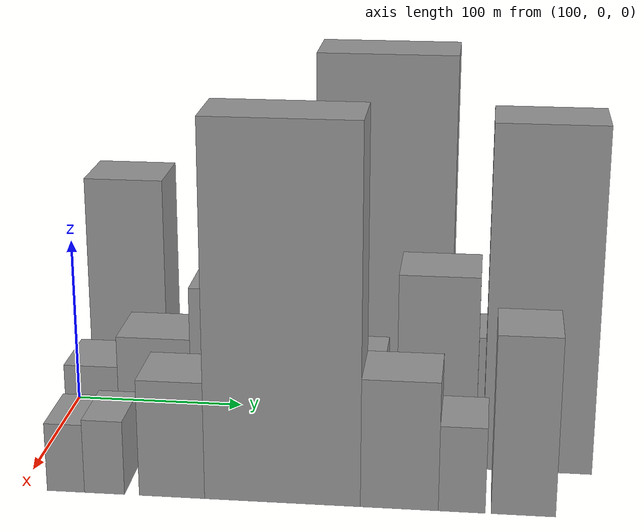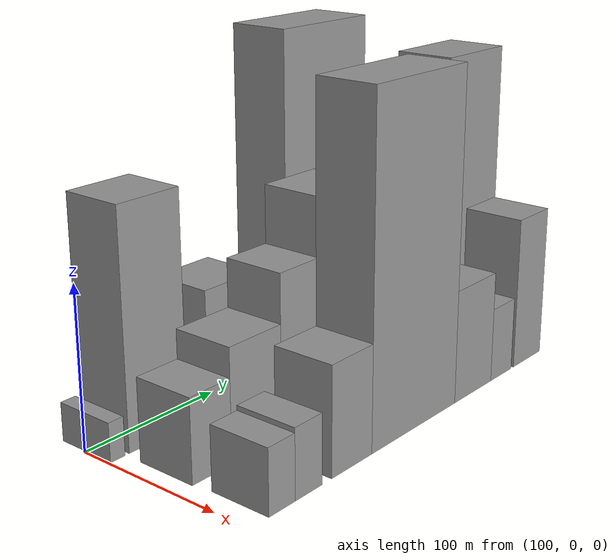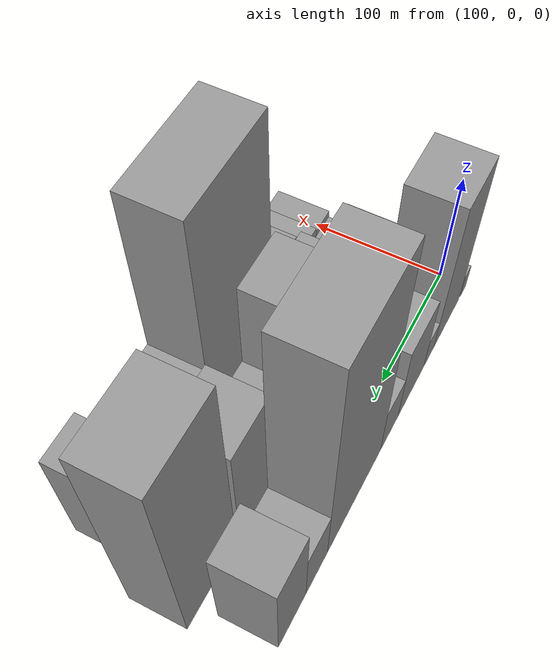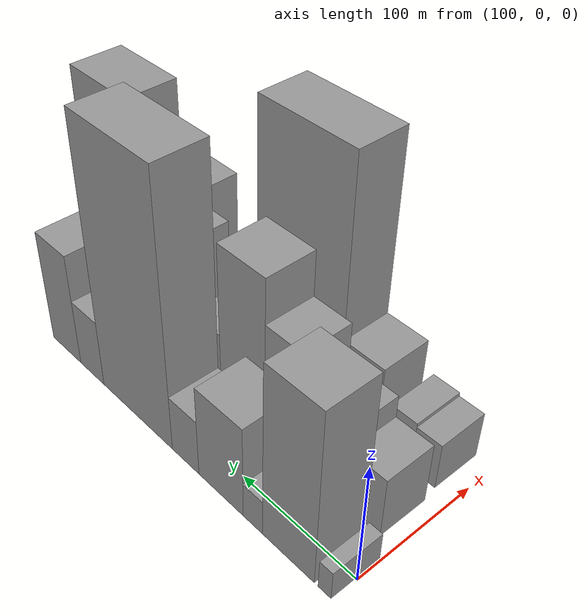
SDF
<sdf version="1.6">
 <world name="default">
  <model name="building_16">
   <static>1</static>
   <pose>100.0000 6.3810 0 0.000000 0.000000 0.000000</pose>
   <link name="link">
    <pose>0 0 12.00 0 0 0</pose>
    <collision name="collision"><geometry><box><size>40.0000 10.6311 24.0000</size></box></geometry></collision>
    <visual name="visual">
     <cast_shadows>0</cast_shadows>
     <geometry><box><size>40.0000 10.6311 24.0000</size></box></geometry>
     <material>
      <script>
       <uri>model://grey_wall/materials/scripts</uri>
       <uri>model://grey_wall/materials/textures</uri>
       <name>vrc/grey_wall</name>
      </script>
     </material>
    </visual>
   </link>
  </model>
  <model name="building_17">
   <static>1</static>
   <pose>100.0000 37.1451 0 0.000000 0.000000 0.000000</pose>
   <link name="link">
    <pose>0 0 72.00 0 0 0</pose>
    <collision name="collision"><geometry><box><size>40.0000 44.8969 144.0000</size></box></geometry></collision>
    <visual name="visual">
     <cast_shadows>0</cast_shadows>
     <geometry><box><size>40.0000 44.8969 144.0000</size></box></geometry>
     <material>
      <script>
       <uri>model://grey_wall/materials/scripts</uri>
       <uri>model://grey_wall/materials/textures</uri>
       <name>vrc/grey_wall</name>
      </script>
     </material>
    </visual>
   </link>
  </model>
  <model name="building_18">
   <static>1</static>
   <pose>100.0000 68.3640 0 0.000000 0.000000 0.000000</pose>
   <link name="link">
    <pose>0 0 15.00 0 0 0</pose>
    <collision name="collision"><geometry><box><size>40.0000 17.5411 30.0000</size></box></geometry></collision>
    <visual name="visual">
     <cast_shadows>0</cast_shadows>
     <geometry><box><size>40.0000 17.5411 30.0000</size></box></geometry>
     <material>
      <script>
       <uri>model://grey_wall/materials/scripts</uri>
       <uri>model://grey_wall/materials/textures</uri>
       <name>vrc/grey_wall</name>
      </script>
     </material>
    </visual>
   </link>
  </model>
  <model name="building_19">
   <static>1</static>
   <pose>100.0000 98.6439 0 0.000000 0.000000 0.000000</pose>
   <link name="link">
    <pose>0 0 39.00 0 0 0</pose>
    <collision name="collision"><geometry><box><size>40.0000 43.0187 78.0000</size></box></geometry></collision>
    <visual name="visual">
     <cast_shadows>0</cast_shadows>
     <geometry><box><size>40.0000 43.0187 78.0000</size></box></geometry>
     <material>
      <script>
       <uri>model://grey_wall/materials/scripts</uri>
       <uri>model://grey_wall/materials/textures</uri>
       <name>vrc/grey_wall</name>
      </script>
     </material>
    </visual>
   </link>
  </model>
  <model name="building_20">
   <static>1</static>
   <pose>100.0000 133.8845 0 0.000000 0.000000 0.000000</pose>
   <link name="link">
    <pose>0 0 24.00 0 0 0</pose>
    <collision name="collision"><geometry><box><size>40.0000 27.4626 48.0000</size></box></geometry></collision>
    <visual name="visual">
     <cast_shadows>0</cast_shadows>
     <geometry><box><size>40.0000 27.4626 48.0000</size></box></geometry>
     <material>
      <script>
       <uri>model://grey_wall/materials/scripts</uri>
       <uri>model://grey_wall/materials/textures</uri>
       <name>vrc/grey_wall</name>
      </script>
     </material>
    </visual>
   </link>
  </model>
  <model name="building_21">
   <static>1</static>
   <pose>100.0000 186.3772 0 0.000000 0.000000 0.000000</pose>
   <link name="link">
    <pose>0 0 109.50 0 0 0</pose>
    <collision name="collision"><geometry><box><size>40.0000 77.5228 219.0000</size></box></geometry></collision>
    <visual name="visual">
     <cast_shadows>0</cast_shadows>
     <geometry><box><size>40.0000 77.5228 219.0000</size></box></geometry>
     <material>
      <script>
       <uri>model://grey_wall/materials/scripts</uri>
       <uri>model://grey_wall/materials/textures</uri>
       <name>vrc/grey_wall</name>
      </script>
     </material>
    </visual>
   </link>
  </model>
  <model name="building_22">
   <static>1</static>
   <pose>100.0000 239.5046 0 0.000000 0.000000 0.000000</pose>
   <link name="link">
    <pose>0 0 28.50 0 0 0</pose>
    <collision name="collision"><geometry><box><size>40.0000 28.7320 57.0000</size></box></geometry></collision>
    <visual name="visual">
     <cast_shadows>0</cast_shadows>
     <geometry><box><size>40.0000 28.7320 57.0000</size></box></geometry>
     <material>
      <script>
       <uri>model://grey_wall/materials/scripts</uri>
       <uri>model://grey_wall/materials/textures</uri>
       <name>vrc/grey_wall</name>
      </script>
     </material>
    </visual>
   </link>
  </model>
  <model name="building_23">
   <static>1</static>
   <pose>100.0000 271.5599 0 0.000000 0.000000 0.000000</pose>
   <link name="link">
    <pose>0 0 48.00 0 0 0</pose>
    <collision name="collision"><geometry><box><size>40.0000 35.3786 96.0000</size></box></geometry></collision>
    <visual name="visual">
     <cast_shadows>0</cast_shadows>
     <geometry><box><size>40.0000 35.3786 96.0000</size></box></geometry>
     <material>
      <script>
       <uri>model://grey_wall/materials/scripts</uri>
       <uri>model://grey_wall/materials/textures</uri>
       <name>vrc/grey_wall</name>
      </script>
     </material>
    </visual>
   </link>
  </model>
  <model name="building_46">
   <static>1</static>
   <pose>152.0000 27.1934 0 0.000000 0.000000 0.000000</pose>
   <link name="link">
    <pose>0 0 25.50 0 0 0</pose>
    <collision name="collision"><geometry><box><size>40.0000 30.2370 51.0000</size></box></geometry></collision>
    <visual name="visual">
     <cast_shadows>0</cast_shadows>
     <geometry><box><size>40.0000 30.2370 51.0000</size></box></geometry>
     <material>
      <script>
       <uri>model://grey_wall/materials/scripts</uri>
       <uri>model://grey_wall/materials/textures</uri>
       <name>vrc/grey_wall</name>
      </script>
     </material>
    </visual>
   </link>
  </model>
  <model name="building_47">
   <static>1</static>
   <pose>152.0000 62.8523 0 0.000000 0.000000 0.000000</pose>
   <link name="link">
    <pose>0 0 34.50 0 0 0</pose>
    <collision name="collision"><geometry><box><size>40.0000 41.0806 69.0000</size></box></geometry></collision>
    <visual name="visual">
     <cast_shadows>0</cast_shadows>
     <geometry><box><size>40.0000 41.0806 69.0000</size></box></geometry>
     <material>
      <script>
       <uri>model://grey_wall/materials/scripts</uri>
       <uri>model://grey_wall/materials/textures</uri>
       <name>vrc/grey_wall</name>
      </script>
     </material>
    </visual>
   </link>
  </model>
  <model name="building_48">
   <static>1</static>
   <pose>152.0000 99.8053 0 0.000000 0.000000 0.000000</pose>
   <link name="link">
    <pose>0 0 49.50 0 0 0</pose>
    <collision name="collision"><geometry><box><size>40.0000 32.8254 99.0000</size></box></geometry></collision>
    <visual name="visual">
     <cast_shadows>0</cast_shadows>
     <geometry><box><size>40.0000 32.8254 99.0000</size></box></geometry>
     <material>
      <script>
       <uri>model://grey_wall/materials/scripts</uri>
       <uri>model://grey_wall/materials/textures</uri>
       <name>vrc/grey_wall</name>
      </script>
     </material>
    </visual>
   </link>
  </model>
  <model name="building_49">
   <static>1</static>
   <pose>152.0000 138.2980 0 0.000000 0.000000 0.000000</pose>
   <link name="link">
    <pose>0 0 67.50 0 0 0</pose>
    <collision name="collision"><geometry><box><size>40.0000 44.1601 135.0000</size></box></geometry></collision>
    <visual name="visual">
     <cast_shadows>0</cast_shadows>
     <geometry><box><size>40.0000 44.1601 135.0000</size></box></geometry>
     <material>
      <script>
       <uri>model://grey_wall/materials/scripts</uri>
       <uri>model://grey_wall/materials/textures</uri>
       <name>vrc/grey_wall</name>
      </script>
     </material>
    </visual>
   </link>
  </model>
  <model name="building_50">
   <static>1</static>
   <pose>152.0000 175.4319 0 0.000000 0.000000 0.000000</pose>
   <link name="link">
    <pose>0 0 30.00 0 0 0</pose>
    <collision name="collision"><geometry><box><size>40.0000 30.1077 60.0000</size></box></geometry></collision>
    <visual name="visual">
     <cast_shadows>0</cast_shadows>
     <geometry><box><size>40.0000 30.1077 60.0000</size></box></geometry>
     <material>
      <script>
       <uri>model://grey_wall/materials/scripts</uri>
       <uri>model://grey_wall/materials/textures</uri>
       <name>vrc/grey_wall</name>
      </script>
     </material>
    </visual>
   </link>
  </model>
  <model name="building_51">
   <static>1</static>
   <pose>152.0000 219.2531 0 0.000000 0.000000 0.000000</pose>
   <link name="link">
    <pose>0 0 55.50 0 0 0</pose>
    <collision name="collision"><geometry><box><size>40.0000 43.5346 111.0000</size></box></geometry></collision>
    <visual name="visual">
     <cast_shadows>0</cast_shadows>
     <geometry><box><size>40.0000 43.5346 111.0000</size></box></geometry>
     <material>
      <script>
       <uri>model://grey_wall/materials/scripts</uri>
       <uri>model://grey_wall/materials/textures</uri>
       <name>vrc/grey_wall</name>
      </script>
     </material>
    </visual>
   </link>
  </model>
  <model name="building_52">
   <static>1</static>
   <pose>152.0000 274.7433 0 0.000000 0.000000 0.000000</pose>
   <link name="link">
    <pose>0 0 97.50 0 0 0</pose>
    <collision name="collision"><geometry><box><size>40.0000 59.4459 195.0000</size></box></geometry></collision>
    <visual name="visual">
     <cast_shadows>0</cast_shadows>
     <geometry><box><size>40.0000 59.4459 195.0000</size></box></geometry>
     <material>
      <script>
       <uri>model://grey_wall/materials/scripts</uri>
       <uri>model://grey_wall/materials/textures</uri>
       <name>vrc/grey_wall</name>
      </script>
     </material>
    </visual>
   </link>
  </model>
  <model name="building_74">
   <static>1</static>
   <pose>204.0000 24.5260 0 0.000000 0.000000 0.000000</pose>
   <link name="link">
    <pose>0 0 19.50 0 0 0</pose>
    <collision name="collision"><geometry><box><size>40.0000 20.3262 39.0000</size></box></geometry></collision>
    <visual name="visual">
     <cast_shadows>0</cast_shadows>
     <geometry><box><size>40.0000 20.3262 39.0000</size></box></geometry>
     <material>
      <script>
       <uri>model://grey_wall/materials/scripts</uri>
       <uri>model://grey_wall/materials/textures</uri>
       <name>vrc/grey_wall</name>
      </script>
     </material>
    </visual>
   </link>
  </model>
  <model name="building_75">
   <static>1</static>
   <pose>204.0000 45.5506 0 0.000000 0.000000 0.000000</pose>
   <link name="link">
    <pose>0 0 21.00 0 0 0</pose>
    <collision name="collision"><geometry><box><size>40.0000 21.7231 42.0000</size></box></geometry></collision>
    <visual name="visual">
     <cast_shadows>0</cast_shadows>
     <geometry><box><size>40.0000 21.7231 42.0000</size></box></geometry>
     <material>
      <script>
       <uri>model://grey_wall/materials/scripts</uri>
       <uri>model://grey_wall/materials/textures</uri>
       <name>vrc/grey_wall</name>
      </script>
     </material>
    </visual>
   </link>
  </model>
  <model name="building_76">
   <static>1</static>
   <pose>204.0000 81.9971 0 0.000000 0.000000 0.000000</pose>
   <link name="link">
    <pose>0 0 33.00 0 0 0</pose>
    <collision name="collision"><geometry><box><size>40.0000 35.1700 66.0000</size></box></geometry></collision>
    <visual name="visual">
     <cast_shadows>0</cast_shadows>
     <geometry><box><size>40.0000 35.1700 66.0000</size></box></geometry>
     <material>
      <script>
       <uri>model://grey_wall/materials/scripts</uri>
       <uri>model://grey_wall/materials/textures</uri>
       <name>vrc/grey_wall</name>
      </script>
     </material>
    </visual>
   </link>
  </model>
  <model name="building_77">
   <static>1</static>
   <pose>204.0000 140.8758 0 0.000000 0.000000 0.000000</pose>
   <link name="link">
    <pose>0 0 103.50 0 0 0</pose>
    <collision name="collision"><geometry><box><size>40.0000 82.5873 207.0000</size></box></geometry></collision>
    <visual name="visual">
     <cast_shadows>0</cast_shadows>
     <geometry><box><size>40.0000 82.5873 207.0000</size></box></geometry>
     <material>
      <script>
       <uri>model://grey_wall/materials/scripts</uri>
       <uri>model://grey_wall/materials/textures</uri>
       <name>vrc/grey_wall</name>
      </script>
     </material>
    </visual>
   </link>
  </model>
  <model name="building_78">
   <static>1</static>
   <pose>204.0000 202.5183 0 0.000000 0.000000 0.000000</pose>
   <link name="link">
    <pose>0 0 36.00 0 0 0</pose>
    <collision name="collision"><geometry><box><size>40.0000 40.6977 72.0000</size></box></geometry></collision>
    <visual name="visual">
     <cast_shadows>0</cast_shadows>
     <geometry><box><size>40.0000 40.6977 72.0000</size></box></geometry>
     <material>
      <script>
       <uri>model://grey_wall/materials/scripts</uri>
       <uri>model://grey_wall/materials/textures</uri>
       <name>vrc/grey_wall</name>
      </script>
     </material>
    </visual>
   </link>
  </model>
  <model name="building_79">
   <static>1</static>
   <pose>204.0000 235.0335 0 0.000000 0.000000 0.000000</pose>
   <link name="link">
    <pose>0 0 24.00 0 0 0</pose>
    <collision name="collision"><geometry><box><size>40.0000 24.3327 48.0000</size></box></geometry></collision>
    <visual name="visual">
     <cast_shadows>0</cast_shadows>
     <geometry><box><size>40.0000 24.3327 48.0000</size></box></geometry>
     <material>
      <script>
       <uri>model://grey_wall/materials/scripts</uri>
       <uri>model://grey_wall/materials/textures</uri>
       <name>vrc/grey_wall</name>
      </script>
     </material>
    </visual>
   </link>
  </model>
  <model name="building_80">
   <static>1</static>
   <pose>204.0000 266.8015 0 0.000000 0.000000 0.000000</pose>
   <link name="link">
    <pose>0 0 49.50 0 0 0</pose>
    <collision name="collision"><geometry><box><size>40.0000 33.2032 99.0000</size></box></geometry></collision>
    <visual name="visual">
     <cast_shadows>0</cast_shadows>
     <geometry><box><size>40.0000 33.2032 99.0000</size></box></geometry>
     <material>
      <script>
       <uri>model://grey_wall/materials/scripts</uri>
       <uri>model://grey_wall/materials/textures</uri>
       <name>vrc/grey_wall</name>
      </script>
     </material>
    </visual>
   </link>
  </model>
 </world>
</sdf>
